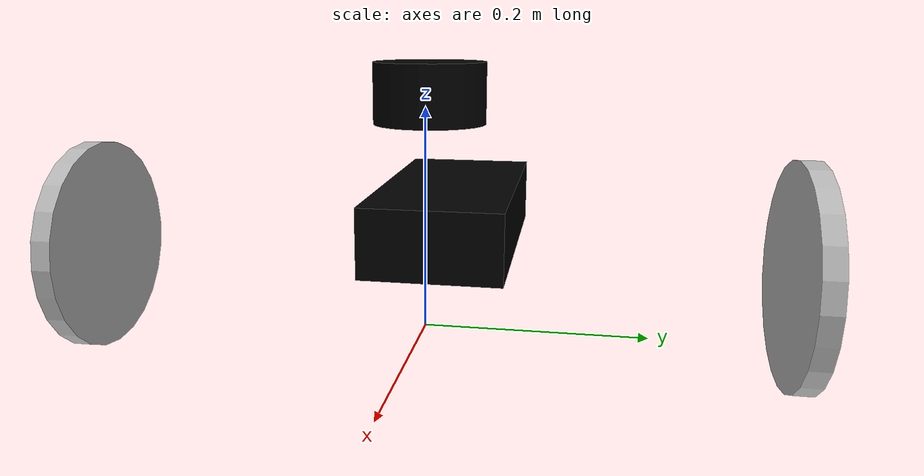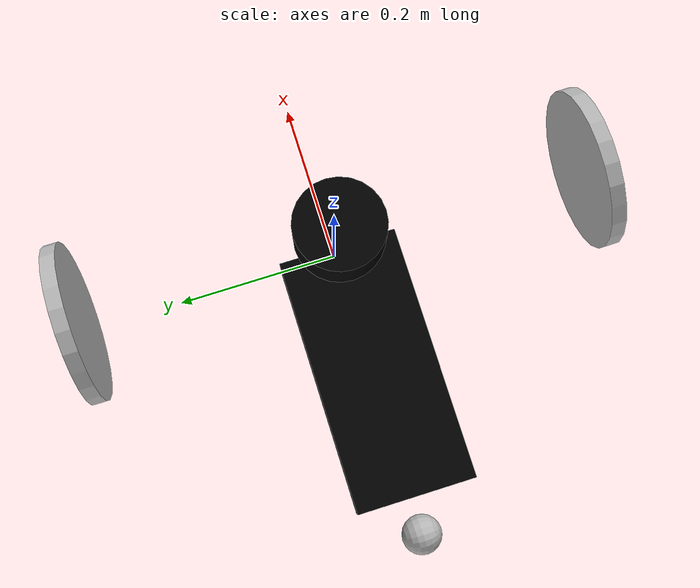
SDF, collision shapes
<?xml version='1.0'?>
<sdf version='1.7'>
  <model name='turtlebot3_burger'>
    <link name='base_footprint'>
      <self_collide>0</self_collide>
      <inertial>
        <pose>0 0 0 0 -0 0</pose>
        <inertia>
          <ixx>1</ixx>
          <ixy>0</ixy>
          <ixz>0</ixz>
          <iyy>1</iyy>
          <iyz>0</iyz>
          <izz>1</izz>
        </inertia>
        <mass>1</mass>
      </inertial>
      <enable_wind>0</enable_wind>
      <kinematic>0</kinematic>
      <pose>0 0 0 0 -0 0</pose>
    </link>
    <link name='base_link'>
      <inertial>
        <pose>-0.152 0 0.07 0 -0 0</pose>
        <inertia>
          <ixx>0.723974</ixx>
          <ixy>0</ixy>
          <ixz>0</ixz>
          <iyy>0.723974</iyy>
          <iyz>0</iyz>
          <izz>0.65305</izz>
        </inertia>
        <mass>5.82573</mass>
      </inertial>
      <self_collide>0</self_collide>
      <enable_wind>0</enable_wind>
      <kinematic>0</kinematic>
      <pose>-0.13 -0 0 0 -0 0</pose>
      <gravity>1</gravity>
      <visual name='base_visual'>
        <pose>-0.032 0 0 0 0 -1.57</pose>
        <geometry>
          <mesh>
            <uri>/home/amareb/model_editor_models/turtlebot3_burger/Assembly HobbieCat16.stl</uri>
            <scale>0.012 0.012 0.012</scale>
          </mesh>
        </geometry>
        <material>
          <shader type='normal_map_object_space'>
            <normal_map>__default__</normal_map>
          </shader>
          <script>
            <name>ModelPreview_4::base_link::base_visual_MATERIAL_ModelPreview_2::base_link::base_visual_MATERIAL_</name>
            <uri>__default__</uri>
          </script>
          <ambient>0 0 0 1</ambient>
          <diffuse>0 0 0 1</diffuse>
          <specular>0 0 0 1</specular>
          <emissive>0 0 0 1</emissive>
        </material>
        <transparency>0</transparency>
        <cast_shadows>1</cast_shadows>
      </visual>
      <collision name='base_collision'>
        <laser_retro>0</laser_retro>
        <max_contacts>10</max_contacts>
        <pose>-0.032 0 0.07 0 -0 0</pose>
        <geometry>
          <box>
            <size>0.3 0.14 0.07</size>
          </box>
        </geometry>
        <surface>
          <friction>
            <ode>
              <mu>1</mu>
              <mu2>1</mu2>
              <fdir1>0 0 0</fdir1>
              <slip1>0</slip1>
              <slip2>0</slip2>
            </ode>
            <torsional>
              <coefficient>1</coefficient>
              <patch_radius>0</patch_radius>
              <surface_radius>0</surface_radius>
              <use_patch_radius>1</use_patch_radius>
              <ode>
                <slip>0</slip>
              </ode>
            </torsional>
          </friction>
          <bounce>
            <restitution_coefficient>0</restitution_coefficient>
            <threshold>1e+06</threshold>
          </bounce>
          <contact>
            <collide_without_contact>0</collide_without_contact>
            <collide_without_contact_bitmask>1</collide_without_contact_bitmask>
            <collide_bitmask>1</collide_bitmask>
            <ode>
              <soft_cfm>0</soft_cfm>
              <soft_erp>0.2</soft_erp>
              <kp>1e+13</kp>
              <kd>1</kd>
              <max_vel>0.01</max_vel>
              <min_depth>0</min_depth>
            </ode>
            <bullet>
              <split_impulse>1</split_impulse>
              <split_impulse_penetration_threshold>-0.01</split_impulse_penetration_threshold>
              <soft_cfm>0</soft_cfm>
              <soft_erp>0.2</soft_erp>
              <kp>1e+13</kp>
              <kd>1</kd>
            </bullet>
          </contact>
        </surface>
      </collision>
    </link>
    <link name='base_scan'>
      <inertial>
        <pose>-0.02 0 0.201 0 -0 0</pose>
        <inertia>
          <ixx>0.001</ixx>
          <ixy>0</ixy>
          <ixz>0</ixz>
          <iyy>0.001</iyy>
          <iyz>0</iyz>
          <izz>0.001</izz>
        </inertia>
        <mass>0.114</mass>
      </inertial>
      <sensor name='hls_lfcd_lds' type='ray'>
        <always_on>1</always_on>
        <visualize>1</visualize>
        <pose>-0.032 0 0.201 0 -0 0</pose>
        <update_rate>5</update_rate>
        <ray>
          <scan>
            <horizontal>
              <samples>360</samples>
              <resolution>1</resolution>
              <min_angle>0</min_angle>
              <max_angle>6.28</max_angle>
            </horizontal>
            <vertical>
              <samples>1</samples>
              <min_angle>0</min_angle>
              <max_angle>0</max_angle>
            </vertical>
          </scan>
          <range>
            <min>0.12</min>
            <max>3.5</max>
            <resolution>0.015</resolution>
          </range>
          <noise>
            <type>gaussian</type>
            <mean>0</mean>
            <stddev>0.01</stddev>
          </noise>
        </ray>
        <plugin name='turtlebot3_laserscan' filename='libgazebo_ros_ray_sensor.so'>
          <ros>
            <remapping>~/out:=scan</remapping>
          </ros>
          <output_type>sensor_msgs/LaserScan</output_type>
          <frame_name>base_scan</frame_name>
        </plugin>
      </sensor>
      <self_collide>0</self_collide>
      <enable_wind>0</enable_wind>
      <kinematic>0</kinematic>
      <pose>0 0 0 0 -0 0</pose>
      <gravity>1</gravity>
      <visual name='lidar_sensor_visual'>
        <pose>-0.032 0 0.211 0 -0 0</pose>
        <geometry>
          <mesh>
            <uri>model://turtlebot3_common/meshes/lds.dae</uri>
            <scale>0.001 0.001 0.001</scale>
          </mesh>
        </geometry>
        <material>
          <shader type='pixel'>
            <normal_map>__default__</normal_map>
          </shader>
          <script>
            <name>ModelPreview_7::base_scan::lidar_sensor_visual_MATERIAL_</name>
            <uri>__default__</uri>
          </script>
          <ambient>0 0 0 1</ambient>
          <diffuse>0 0 0 1</diffuse>
          <specular>0 0 0 1</specular>
          <emissive>0 0 0 1</emissive>
        </material>
        <transparency>0</transparency>
        <cast_shadows>1</cast_shadows>
      </visual>
      <collision name='lidar_sensor_collision'>
        <laser_retro>0</laser_retro>
        <max_contacts>10</max_contacts>
        <pose>-0.02 0 0.211 0 -0 0</pose>
        <geometry>
          <cylinder>
            <radius>0.0508</radius>
            <length>0.055</length>
          </cylinder>
        </geometry>
        <surface>
          <friction>
            <ode>
              <mu>1</mu>
              <mu2>1</mu2>
              <fdir1>0 0 0</fdir1>
              <slip1>0</slip1>
              <slip2>0</slip2>
            </ode>
            <torsional>
              <coefficient>1</coefficient>
              <patch_radius>0</patch_radius>
              <surface_radius>0</surface_radius>
              <use_patch_radius>1</use_patch_radius>
              <ode>
                <slip>0</slip>
              </ode>
            </torsional>
          </friction>
          <bounce>
            <restitution_coefficient>0</restitution_coefficient>
            <threshold>1e+06</threshold>
          </bounce>
          <contact>
            <collide_without_contact>0</collide_without_contact>
            <collide_without_contact_bitmask>1</collide_without_contact_bitmask>
            <collide_bitmask>1</collide_bitmask>
            <ode>
              <soft_cfm>0</soft_cfm>
              <soft_erp>0.2</soft_erp>
              <kp>1e+13</kp>
              <kd>1</kd>
              <max_vel>0.01</max_vel>
              <min_depth>0</min_depth>
            </ode>
            <bullet>
              <split_impulse>1</split_impulse>
              <split_impulse_penetration_threshold>-0.01</split_impulse_penetration_threshold>
              <soft_cfm>0</soft_cfm>
              <soft_erp>0.2</soft_erp>
              <kp>1e+13</kp>
              <kd>1</kd>
            </bullet>
          </contact>
        </surface>
      </collision>
    </link>
    <link name='caster_back_link'>
      <pose>-0.361 0 -0.02 -1.57 0 0</pose>
      <inertial>
        <mass>0.005</mass>
        <inertia>
          <ixx>0.001</ixx>
          <ixy>0</ixy>
          <ixz>0</ixz>
          <iyy>0.001</iyy>
          <iyz>0</iyz>
          <izz>0.001</izz>
        </inertia>
        <pose>0 0 0 0 -0 0</pose>
      </inertial>
      <self_collide>0</self_collide>
      <enable_wind>0</enable_wind>
      <kinematic>0</kinematic>
      <gravity>1</gravity>
      <collision name='collision'>
        <laser_retro>0</laser_retro>
        <max_contacts>10</max_contacts>
        <pose>0 0 0 0 -0 0</pose>
        <geometry>
          <sphere>
            <radius>0.025</radius>
          </sphere>
        </geometry>
        <surface>
          <friction>
            <ode>
              <mu>1</mu>
              <mu2>1</mu2>
              <fdir1>0 0 0</fdir1>
              <slip1>0</slip1>
              <slip2>0</slip2>
            </ode>
            <torsional>
              <coefficient>1</coefficient>
              <patch_radius>0</patch_radius>
              <surface_radius>0</surface_radius>
              <use_patch_radius>1</use_patch_radius>
              <ode>
                <slip>0</slip>
              </ode>
            </torsional>
          </friction>
          <bounce>
            <restitution_coefficient>0</restitution_coefficient>
            <threshold>1e+06</threshold>
          </bounce>
          <contact>
            <collide_without_contact>0</collide_without_contact>
            <collide_without_contact_bitmask>1</collide_without_contact_bitmask>
            <collide_bitmask>1</collide_bitmask>
            <ode>
              <soft_cfm>0</soft_cfm>
              <soft_erp>0.2</soft_erp>
              <kp>100000</kp>
              <kd>1</kd>
              <max_vel>0.01</max_vel>
              <min_depth>0.001</min_depth>
            </ode>
            <bullet>
              <split_impulse>1</split_impulse>
              <split_impulse_penetration_threshold>-0.01</split_impulse_penetration_threshold>
              <soft_cfm>0</soft_cfm>
              <soft_erp>0.2</soft_erp>
              <kp>100000</kp>
              <kd>1</kd>
            </bullet>
          </contact>
        </surface>
      </collision>
    </link>
    <link name='imu_link'>
      <sensor name='tb3_imu' type='imu'>
        <always_on>1</always_on>
        <update_rate>200</update_rate>
        <imu>
          <angular_velocity>
            <x>
              <noise type='gaussian'>
                <mean>0</mean>
                <stddev>0.0002</stddev>
              </noise>
            </x>
            <y>
              <noise type='gaussian'>
                <mean>0</mean>
                <stddev>0.0002</stddev>
              </noise>
            </y>
            <z>
              <noise type='gaussian'>
                <mean>0</mean>
                <stddev>0.0002</stddev>
              </noise>
            </z>
          </angular_velocity>
          <linear_acceleration>
            <x>
              <noise type='gaussian'>
                <mean>0</mean>
                <stddev>0.017</stddev>
              </noise>
            </x>
            <y>
              <noise type='gaussian'>
                <mean>0</mean>
                <stddev>0.017</stddev>
              </noise>
            </y>
            <z>
              <noise type='gaussian'>
                <mean>0</mean>
                <stddev>0.017</stddev>
              </noise>
            </z>
          </linear_acceleration>
          <angular_velocity/>
          <linear_acceleration/>
        </imu>
        <plugin name='turtlebot3_imu' filename='libgazebo_ros_imu_sensor.so'>
          <ros>
            <remapping>~/out:=imu</remapping>
          </ros>
        </plugin>
      </sensor>
      <self_collide>0</self_collide>
      <inertial>
        <pose>0 0 0 0 -0 0</pose>
        <inertia>
          <ixx>1</ixx>
          <ixy>0</ixy>
          <ixz>0</ixz>
          <iyy>1</iyy>
          <iyz>0</iyz>
          <izz>1</izz>
        </inertia>
        <mass>1</mass>
      </inertial>
      <enable_wind>0</enable_wind>
      <kinematic>0</kinematic>
      <pose>0 0 0 0 -0 0</pose>
    </link>
    <link name='wheel_left_link'>
      <inertial>
        <pose>0 0.08 0.063 -1.57 0 0</pose>
        <inertia>
          <ixx>0.00181582</ixx>
          <ixy>0</ixy>
          <ixz>0</ixz>
          <iyy>0.00329221</iyy>
          <iyz>0</iyz>
          <izz>0.00181582</izz>
        </inertia>
        <mass>0.0284989</mass>
      </inertial>
      <self_collide>0</self_collide>
      <enable_wind>0</enable_wind>
      <kinematic>0</kinematic>
      <pose>0 0 0 0 -0 0</pose>
      <gravity>1</gravity>
      <collision name='wheel_left_collision'>
        <laser_retro>0</laser_retro>
        <max_contacts>10</max_contacts>
        <pose>0 0.32 0.063 -1.57 0 0</pose>
        <geometry>
          <cylinder>
            <radius>0.099</radius>
            <length>0.018</length>
          </cylinder>
        </geometry>
        <surface>
          <friction>
            <ode>
              <mu>100000</mu>
              <mu2>100000</mu2>
              <fdir1>0 0 0</fdir1>
              <slip1>0</slip1>
              <slip2>0</slip2>
            </ode>
            <torsional>
              <coefficient>1</coefficient>
              <patch_radius>0</patch_radius>
              <surface_radius>0</surface_radius>
              <use_patch_radius>1</use_patch_radius>
              <ode>
                <slip>0</slip>
              </ode>
            </torsional>
          </friction>
          <bounce>
            <restitution_coefficient>0</restitution_coefficient>
            <threshold>1e+06</threshold>
          </bounce>
          <contact>
            <collide_without_contact>0</collide_without_contact>
            <collide_without_contact_bitmask>1</collide_without_contact_bitmask>
            <collide_bitmask>1</collide_bitmask>
            <ode>
              <soft_cfm>0</soft_cfm>
              <soft_erp>0.2</soft_erp>
              <kp>100000</kp>
              <kd>1</kd>
              <max_vel>0.01</max_vel>
              <min_depth>0.001</min_depth>
            </ode>
            <bullet>
              <split_impulse>1</split_impulse>
              <split_impulse_penetration_threshold>-0.01</split_impulse_penetration_threshold>
              <soft_cfm>0</soft_cfm>
              <soft_erp>0.2</soft_erp>
              <kp>100000</kp>
              <kd>1</kd>
            </bullet>
          </contact>
        </surface>
      </collision>
    </link>
    <link name='wheel_right_link'>
      <inertial>
        <pose>0 -0.32 0.063 -1.57 0 0</pose>
        <inertia>
          <ixx>0.00181582</ixx>
          <ixy>0</ixy>
          <ixz>0</ixz>
          <iyy>0.00329221</iyy>
          <iyz>0</iyz>
          <izz>0.00181582</izz>
        </inertia>
        <mass>0.0284989</mass>
      </inertial>
      <self_collide>0</self_collide>
      <enable_wind>0</enable_wind>
      <kinematic>0</kinematic>
      <pose>0 0 0 0 -0 0</pose>
      <gravity>1</gravity>
      <collision name='wheel_right_collision'>
        <laser_retro>0</laser_retro>
        <max_contacts>10</max_contacts>
        <pose>0 -0.32 0.063 -1.57 0 0</pose>
        <geometry>
          <cylinder>
            <radius>0.099</radius>
            <length>0.018</length>
          </cylinder>
        </geometry>
        <surface>
          <friction>
            <ode>
              <mu>100000</mu>
              <mu2>100000</mu2>
              <fdir1>0 0 0</fdir1>
              <slip1>0</slip1>
              <slip2>0</slip2>
            </ode>
            <torsional>
              <coefficient>1</coefficient>
              <patch_radius>0</patch_radius>
              <surface_radius>0</surface_radius>
              <use_patch_radius>1</use_patch_radius>
              <ode>
                <slip>0</slip>
              </ode>
            </torsional>
          </friction>
          <bounce>
            <restitution_coefficient>0</restitution_coefficient>
            <threshold>1e+06</threshold>
          </bounce>
          <contact>
            <collide_without_contact>0</collide_without_contact>
            <collide_without_contact_bitmask>1</collide_without_contact_bitmask>
            <collide_bitmask>1</collide_bitmask>
            <ode>
              <soft_cfm>0</soft_cfm>
              <soft_erp>0.2</soft_erp>
              <kp>100000</kp>
              <kd>1</kd>
              <max_vel>0.01</max_vel>
              <min_depth>0.001</min_depth>
            </ode>
            <bullet>
              <split_impulse>1</split_impulse>
              <split_impulse_penetration_threshold>-0.01</split_impulse_penetration_threshold>
              <soft_cfm>0</soft_cfm>
              <soft_erp>0.2</soft_erp>
              <kp>100000</kp>
              <kd>1</kd>
            </bullet>
          </contact>
        </surface>
      </collision>
    </link>
    <joint name='base_joint' type='fixed'>
      <parent>base_footprint</parent>
      <child>base_link</child>
      <pose>0 0 0.01 0 -0 0</pose>
      <physics>
        <ode>
          <limit>
            <cfm>0</cfm>
            <erp>0.2</erp>
          </limit>
          <suspension>
            <cfm>0</cfm>
            <erp>0.2</erp>
          </suspension>
        </ode>
      </physics>
    </joint>
    <joint name='caster_back_joint' type='ball'>
      <parent>base_link</parent>
      <child>caster_back_link</child>
      <pose>0 0 0 0 -0 0</pose>
      <physics>
        <ode>
          <limit>
            <cfm>0</cfm>
            <erp>0.2</erp>
          </limit>
          <suspension>
            <cfm>0</cfm>
            <erp>0.2</erp>
          </suspension>
        </ode>
      </physics>
    </joint>
    <joint name='imu_joint' type='fixed'>
      <parent>base_link</parent>
      <child>imu_link</child>
      <pose>-0.032 0 0.068 0 -0 0</pose>
      <physics>
        <ode>
          <limit>
            <cfm>0</cfm>
            <erp>0.2</erp>
          </limit>
          <suspension>
            <cfm>0</cfm>
            <erp>0.2</erp>
          </suspension>
        </ode>
      </physics>
    </joint>
    <joint name='lidar_joint' type='fixed'>
      <parent>base_link</parent>
      <child>base_scan</child>
      <pose>-0.032 0 0.201 0 -0 0</pose>
      <physics>
        <ode>
          <limit>
            <cfm>0</cfm>
            <erp>0.2</erp>
          </limit>
          <suspension>
            <cfm>0</cfm>
            <erp>0.2</erp>
          </suspension>
        </ode>
      </physics>
    </joint>
    <joint name='wheel_left_joint' type='revolute'>
      <parent>base_link</parent>
      <child>wheel_left_link</child>
      <pose>0 0.32 0.063 -1.57 0 0</pose>
      <axis>
        <xyz>0 0 1</xyz>
        <limit>
          <lower>-1e+16</lower>
          <upper>1e+16</upper>
          <effort>-1</effort>
          <velocity>-1</velocity>
        </limit>
        <dynamics>
          <spring_reference>0</spring_reference>
          <spring_stiffness>0</spring_stiffness>
          <damping>0</damping>
          <friction>0</friction>
        </dynamics>
      </axis>
      <physics>
        <ode>
          <limit>
            <cfm>0</cfm>
            <erp>0.2</erp>
          </limit>
          <suspension>
            <cfm>0</cfm>
            <erp>0.2</erp>
          </suspension>
        </ode>
      </physics>
    </joint>
    <joint name='wheel_right_joint' type='revolute'>
      <parent>base_link</parent>
      <child>wheel_right_link</child>
      <pose>0 -0.32 0.063 -1.57 0 0</pose>
      <axis>
        <xyz>0 0 1</xyz>
        <limit>
          <lower>-1e+16</lower>
          <upper>1e+16</upper>
          <effort>-1</effort>
          <velocity>-1</velocity>
        </limit>
        <dynamics>
          <spring_reference>0</spring_reference>
          <spring_stiffness>0</spring_stiffness>
          <damping>0</damping>
          <friction>0</friction>
        </dynamics>
      </axis>
      <physics>
        <ode>
          <limit>
            <cfm>0</cfm>
            <erp>0.2</erp>
          </limit>
          <suspension>
            <cfm>0</cfm>
            <erp>0.2</erp>
          </suspension>
        </ode>
      </physics>
    </joint>
    <static>0</static>
    <allow_auto_disable>1</allow_auto_disable>
    <plugin name='turtlebot3_diff_drive' filename='libgazebo_ros_diff_drive.so'>
      <ros/>
      <update_rate>30</update_rate>
      <left_joint>wheel_left_joint</left_joint>
      <right_joint>wheel_right_joint</right_joint>
      <wheel_separation>0.160</wheel_separation>
      <wheel_diameter>0.066</wheel_diameter>
      <max_wheel_torque>20</max_wheel_torque>
      <max_wheel_acceleration>1.0</max_wheel_acceleration>
      <command_topic>cmd_vel</command_topic>
      <publish_odom>1</publish_odom>
      <publish_odom_tf>1</publish_odom_tf>
      <publish_wheel_tf>0</publish_wheel_tf>
      <odometry_topic>odom</odometry_topic>
      <odometry_frame>odom</odometry_frame>
      <robot_base_frame>base_footprint</robot_base_frame>
    </plugin>
    <plugin name='turtlebot3_joint_state' filename='libgazebo_ros_joint_state_publisher.so'>
      <ros>
        <remapping>~/out:=joint_states</remapping>
      </ros>
      <update_rate>30</update_rate>
      <joint_name>wheel_left_joint</joint_name>
      <joint_name>wheel_right_joint</joint_name>
    </plugin>
  </model>
</sdf>
